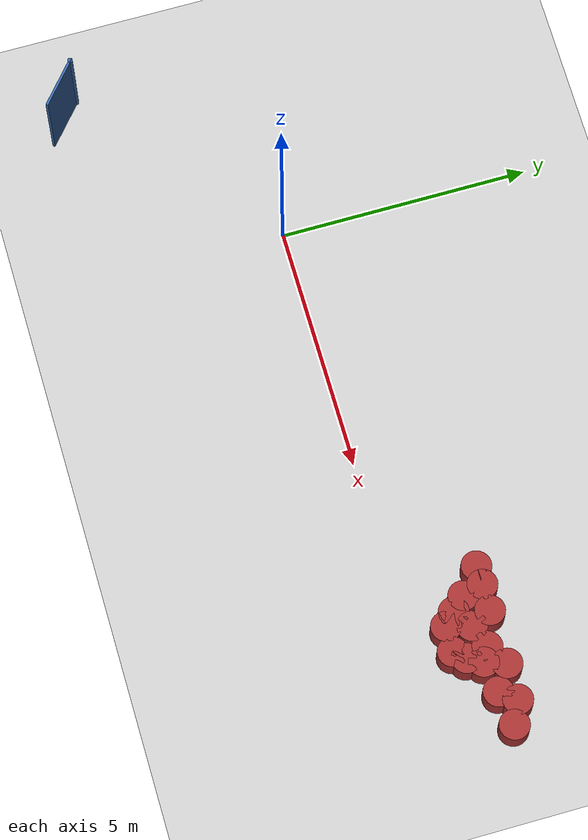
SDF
<sdf version="1.6">
 <world name="default">
  <model name="ground_plane">
   <static>1</static>
   <link name="link">
    <collision name="collision">
     <geometry><plane><normal>0 0 1</normal><size>100 100</size></plane></geometry>
     <surface><friction><ode><mu>100</mu><mu2>50</mu2></ode></friction></surface>
    </collision>
    <visual name="visual">
     <cast_shadows>0</cast_shadows>
     <geometry><plane><normal>0 0 1</normal><size>100 100</size></plane></geometry>
     <material>
      <script><uri>file://media/materials/scripts/gazebo.material</uri><name>Gazebo/Grey</name></script>
     </material>
    </visual>
   </link>
  </model>
  <model name="unit_cylinder_0">
   <static>1</static>
   <pose>8.49487 0.951336 0 0 -0 0</pose>
   <link name="link">
    <inertial>
     <mass>1</mass>
     <inertia><ixx>0.145833</ixx><ixy>0</ixy><ixz>0</ixz><iyy>0.145833</iyy><iyz>0</iyz><izz>0.125</izz></inertia>
    </inertial>
    <collision name="collision">
     <geometry><cylinder><radius>0.3</radius><length>1</length></cylinder></geometry>
    </collision>
    <visual name="visual">
     <geometry><cylinder><radius>0.3</radius><length>1</length></cylinder></geometry>
     <material><ambient>0.648 0.192 0.192 1</ambient><diffuse>0.648 0.192 0.192 1</diffuse></material>
     <material>
      <script><name>Gazebo/Grey</name><uri>file://media/materials/scripts/gazebo.material</uri></script>
     </material>
    </visual>
   </link>
  </model>
  <model name="unit_cylinder_8">
   <static>1</static>
   <pose>7.7404 1.62892 0 0 -0 0</pose>
   <link name="link">
    <inertial>
     <mass>1</mass>
     <inertia><ixx>0.145833</ixx><ixy>0</ixy><ixz>0</ixz><iyy>0.145833</iyy><iyz>0</iyz><izz>0.125</izz></inertia>
    </inertial>
    <collision name="collision">
     <geometry><cylinder><radius>0.3</radius><length>1</length></cylinder></geometry>
    </collision>
    <visual name="visual">
     <geometry><cylinder><radius>0.3</radius><length>1</length></cylinder></geometry>
     <material><ambient>0.648 0.192 0.192 1</ambient><diffuse>0.648 0.192 0.192 1</diffuse></material>
     <material>
      <script><name>Gazebo/Grey</name><uri>file://media/materials/scripts/gazebo.material</uri></script>
     </material>
    </visual>
   </link>
  </model>
  <model name="unit_cylinder_9">
   <static>1</static>
   <pose>8.23796 1.21672 0 0 -0 0</pose>
   <link name="link">
    <inertial>
     <mass>1</mass>
     <inertia><ixx>0.145833</ixx><ixy>0</ixy><ixz>0</ixz><iyy>0.145833</iyy><iyz>0</iyz><izz>0.125</izz></inertia>
    </inertial>
    <collision name="collision">
     <geometry><cylinder><radius>0.3</radius><length>1</length></cylinder></geometry>
    </collision>
    <visual name="visual">
     <geometry><cylinder><radius>0.3</radius><length>1</length></cylinder></geometry>
     <material><ambient>0.648 0.192 0.192 1</ambient><diffuse>0.648 0.192 0.192 1</diffuse></material>
     <material>
      <script><name>Gazebo/Grey</name><uri>file://media/materials/scripts/gazebo.material</uri></script>
     </material>
    </visual>
   </link>
  </model>
  <model name="unit_cylinder_14">
   <static>1</static>
   <pose>10.9078 1.41419 0 0 -0 0</pose>
   <link name="link">
    <inertial>
     <mass>1</mass>
     <inertia><ixx>0.145833</ixx><ixy>0</ixy><ixz>0</ixz><iyy>0.145833</iyy><iyz>0</iyz><izz>0.125</izz></inertia>
    </inertial>
    <collision name="collision">
     <geometry><cylinder><radius>0.3</radius><length>1</length></cylinder></geometry>
    </collision>
    <visual name="visual">
     <geometry><cylinder><radius>0.3</radius><length>1</length></cylinder></geometry>
     <material><ambient>0.648 0.192 0.192 1</ambient><diffuse>0.648 0.192 0.192 1</diffuse></material>
     <material>
      <script><name>Gazebo/Grey</name><uri>file://media/materials/scripts/gazebo.material</uri></script>
     </material>
    </visual>
   </link>
  </model>
  <model name="unit_cylinder_17">
   <static>1</static>
   <pose>10.2158 1.31151 0 0 -0 0</pose>
   <link name="link">
    <inertial>
     <mass>1</mass>
     <inertia><ixx>0.145833</ixx><ixy>0</ixy><ixz>0</ixz><iyy>0.145833</iyy><iyz>0</iyz><izz>0.125</izz></inertia>
    </inertial>
    <collision name="collision">
     <geometry><cylinder><radius>0.3</radius><length>1</length></cylinder></geometry>
    </collision>
    <visual name="visual">
     <geometry><cylinder><radius>0.3</radius><length>1</length></cylinder></geometry>
     <material><ambient>0.648 0.192 0.192 1</ambient><diffuse>0.648 0.192 0.192 1</diffuse></material>
     <material>
      <script><name>Gazebo/Grey</name><uri>file://media/materials/scripts/gazebo.material</uri></script>
     </material>
    </visual>
   </link>
  </model>
  <model name="unit_cylinder_24">
   <static>1</static>
   <pose>10.4578 1.61905 0 0 -0 0</pose>
   <link name="link">
    <inertial>
     <mass>1</mass>
     <inertia><ixx>0.145833</ixx><ixy>0</ixy><ixz>0</ixz><iyy>0.145833</iyy><iyz>0</iyz><izz>0.125</izz></inertia>
    </inertial>
    <collision name="collision">
     <geometry><cylinder><radius>0.3</radius><length>1</length></cylinder></geometry>
    </collision>
    <visual name="visual">
     <geometry><cylinder><radius>0.3</radius><length>1</length></cylinder></geometry>
     <material><ambient>0.648 0.192 0.192 1</ambient><diffuse>0.648 0.192 0.192 1</diffuse></material>
     <material>
      <script><name>Gazebo/Grey</name><uri>file://media/materials/scripts/gazebo.material</uri></script>
     </material>
    </visual>
   </link>
  </model>
  <model name="unit_cylinder_32">
   <static>1</static>
   <pose>9.73455 1.63137 0 0 -0 0</pose>
   <link name="link">
    <inertial>
     <mass>1</mass>
     <inertia><ixx>0.145833</ixx><ixy>0</ixy><ixz>0</ixz><iyy>0.145833</iyy><iyz>0</iyz><izz>0.125</izz></inertia>
    </inertial>
    <collision name="collision">
     <geometry><cylinder><radius>0.3</radius><length>1</length></cylinder></geometry>
    </collision>
    <visual name="visual">
     <geometry><cylinder><radius>0.3</radius><length>1</length></cylinder></geometry>
     <material><ambient>0.648 0.192 0.192 1</ambient><diffuse>0.648 0.192 0.192 1</diffuse></material>
     <material>
      <script><name>Gazebo/Grey</name><uri>file://media/materials/scripts/gazebo.material</uri></script>
     </material>
    </visual>
   </link>
  </model>
  <model name="unit_cylinder_41">
   <static>1</static>
   <pose>9.42873 0.920726 0 0 -0 0</pose>
   <link name="link">
    <inertial>
     <mass>1</mass>
     <inertia><ixx>0.145833</ixx><ixy>0</ixy><ixz>0</ixz><iyy>0.145833</iyy><iyz>0</iyz><izz>0.125</izz></inertia>
    </inertial>
    <collision name="collision">
     <geometry><cylinder><radius>0.3</radius><length>1</length></cylinder></geometry>
    </collision>
    <visual name="visual">
     <geometry><cylinder><radius>0.3</radius><length>1</length></cylinder></geometry>
     <material><ambient>0.648 0.192 0.192 1</ambient><diffuse>0.648 0.192 0.192 1</diffuse></material>
     <material>
      <script><name>Gazebo/Grey</name><uri>file://media/materials/scripts/gazebo.material</uri></script>
     </material>
    </visual>
   </link>
  </model>
  <model name="unit_cylinder_42">
   <static>1</static>
   <pose>9.23696 0.705928 0 0 -0 0</pose>
   <link name="link">
    <inertial>
     <mass>1</mass>
     <inertia><ixx>0.145833</ixx><ixy>0</ixy><ixz>0</ixz><iyy>0.145833</iyy><iyz>0</iyz><izz>0.125</izz></inertia>
    </inertial>
    <collision name="collision">
     <geometry><cylinder><radius>0.3</radius><length>1</length></cylinder></geometry>
    </collision>
    <visual name="visual">
     <geometry><cylinder><radius>0.3</radius><length>1</length></cylinder></geometry>
     <material><ambient>0.648 0.192 0.192 1</ambient><diffuse>0.648 0.192 0.192 1</diffuse></material>
     <material>
      <script><name>Gazebo/Grey</name><uri>file://media/materials/scripts/gazebo.material</uri></script>
     </material>
    </visual>
   </link>
  </model>
  <model name="unit_cylinder_45">
   <static>1</static>
   <pose>9.58952 1.21252 0 0 -0 0</pose>
   <link name="link">
    <inertial>
     <mass>1</mass>
     <inertia><ixx>0.145833</ixx><ixy>0</ixy><ixz>0</ixz><iyy>0.145833</iyy><iyz>0</iyz><izz>0.125</izz></inertia>
    </inertial>
    <collision name="collision">
     <geometry><cylinder><radius>0.3</radius><length>1</length></cylinder></geometry>
    </collision>
    <visual name="visual">
     <geometry><cylinder><radius>0.3</radius><length>1</length></cylinder></geometry>
     <material><ambient>0.648 0.192 0.192 1</ambient><diffuse>0.648 0.192 0.192 1</diffuse></material>
     <material>
      <script><name>Gazebo/Grey</name><uri>file://media/materials/scripts/gazebo.material</uri></script>
     </material>
    </visual>
   </link>
  </model>
  <model name="unit_cylinder_46">
   <static>1</static>
   <pose>9.31119 1.36847 0 0 -0 0</pose>
   <link name="link">
    <inertial>
     <mass>1</mass>
     <inertia><ixx>0.145833</ixx><ixy>0</ixy><ixz>0</ixz><iyy>0.145833</iyy><iyz>0</iyz><izz>0.125</izz></inertia>
    </inertial>
    <collision name="collision">
     <geometry><cylinder><radius>0.3</radius><length>1</length></cylinder></geometry>
    </collision>
    <visual name="visual">
     <geometry><cylinder><radius>0.3</radius><length>1</length></cylinder></geometry>
     <material><ambient>0.648 0.192 0.192 1</ambient><diffuse>0.648 0.192 0.192 1</diffuse></material>
     <material>
      <script><name>Gazebo/Grey</name><uri>file://media/materials/scripts/gazebo.material</uri></script>
     </material>
    </visual>
   </link>
  </model>
  <model name="unit_cylinder_346">
   <static>1</static>
   <pose>8.65275 1.62159 0 0 -0 0</pose>
   <link name="link">
    <inertial>
     <mass>1</mass>
     <inertia><ixx>0.145833</ixx><ixy>0</ixy><ixz>0</ixz><iyy>0.145833</iyy><iyz>0</iyz><izz>0.125</izz></inertia>
    </inertial>
    <collision name="collision">
     <geometry><cylinder><radius>0.3</radius><length>1</length></cylinder></geometry>
    </collision>
    <visual name="visual">
     <geometry><cylinder><radius>0.3</radius><length>1</length></cylinder></geometry>
     <material><ambient>0.648 0.192 0.192 1</ambient><diffuse>0.648 0.192 0.192 1</diffuse></material>
     <material>
      <script><name>Gazebo/Grey</name><uri>file://media/materials/scripts/gazebo.material</uri></script>
     </material>
    </visual>
   </link>
  </model>
  <model name="unit_cylinder_350">
   <static>1</static>
   <pose>8.85704 1.20294 0 0 -0 0</pose>
   <link name="link">
    <inertial>
     <mass>1</mass>
     <inertia><ixx>0.145833</ixx><ixy>0</ixy><ixz>0</ixz><iyy>0.145833</iyy><iyz>0</iyz><izz>0.125</izz></inertia>
    </inertial>
    <collision name="collision">
     <geometry><cylinder><radius>0.3</radius><length>1</length></cylinder></geometry>
    </collision>
    <visual name="visual">
     <geometry><cylinder><radius>0.3</radius><length>1</length></cylinder></geometry>
     <material><ambient>0.648 0.192 0.192 1</ambient><diffuse>0.648 0.192 0.192 1</diffuse></material>
     <material>
      <script><name>Gazebo/Grey</name><uri>file://media/materials/scripts/gazebo.material</uri></script>
     </material>
    </visual>
   </link>
  </model>
  <model name="unit_cylinder_353">
   <static>1</static>
   <pose>8.72731 0.727768 0 0 -0 0</pose>
   <link name="link">
    <inertial>
     <mass>1</mass>
     <inertia><ixx>0.145833</ixx><ixy>0</ixy><ixz>0</ixz><iyy>0.145833</iyy><iyz>0</iyz><izz>0.125</izz></inertia>
    </inertial>
    <collision name="collision">
     <geometry><cylinder><radius>0.3</radius><length>1</length></cylinder></geometry>
    </collision>
    <visual name="visual">
     <geometry><cylinder><radius>0.3</radius><length>1</length></cylinder></geometry>
     <material><ambient>0.648 0.192 0.192 1</ambient><diffuse>0.648 0.192 0.192 1</diffuse></material>
     <material>
      <script><name>Gazebo/Grey</name><uri>file://media/materials/scripts/gazebo.material</uri></script>
     </material>
    </visual>
   </link>
  </model>
  <model name="unit_cylinder_358">
   <static>1</static>
   <pose>8.12041 1.63309 0 0 -0 0</pose>
   <link name="link">
    <inertial>
     <mass>1</mass>
     <inertia><ixx>0.145833</ixx><ixy>0</ixy><ixz>0</ixz><iyy>0.145833</iyy><iyz>0</iyz><izz>0.125</izz></inertia>
    </inertial>
    <collision name="collision">
     <geometry><cylinder><radius>0.3</radius><length>1</length></cylinder></geometry>
    </collision>
    <visual name="visual">
     <geometry><cylinder><radius>0.3</radius><length>1</length></cylinder></geometry>
     <material><ambient>0.648 0.192 0.192 1</ambient><diffuse>0.648 0.192 0.192 1</diffuse></material>
     <material>
      <script><name>Gazebo/Grey</name><uri>file://media/materials/scripts/gazebo.material</uri></script>
     </material>
    </visual>
   </link>
  </model>
  <model name="hinge_door">
   <link name="link_0">
    <inertial>
     <mass>0.11</mass>
     <inertia>
      <ixx>0.0366896</ixx>
      <ixy>0</ixy>
      <ixz>0</ixz>
      <iyy>0.0477583</iyy>
      <iyz>0</iyz>
      <izz>0.0111146</izz>
     </inertia>
    </inertial>
    <pose>0.25 0 1 0 -0 0</pose>
    <visual name="visual">
     <geometry><box><size>1.1 0.05 2</size></box></geometry>
     <material>
      <lighting>1</lighting>
      <script><uri>file://media/materials/scripts/gazebo.material</uri><name>Gazebo/Grey</name></script>
      <shader type="pixel"><normal_map>__default__</normal_map></shader>
      <ambient>0.204 0.396 0.643 1</ambient>
      <diffuse>0.7 0.7 0.7 1</diffuse>
      <specular>0.01 0.01 0.01 1</specular>
      <emissive>0 0 0 1</emissive>
     </material>
    </visual>
    <collision name="collision">
     <geometry><box><size>1.1 0.05 2</size></box></geometry>
     <surface>
      <friction>
       <ode><mu>1</mu><mu2>1</mu2><fdir1>0 0 0</fdir1><slip1>0</slip1><slip2>0</slip2></ode>
       <torsional>
        <coefficient>1</coefficient>
        <patch_radius>0</patch_radius>
        <surface_radius>0</surface_radius>
        <use_patch_radius>1</use_patch_radius>
        <ode><slip>0</slip></ode>
       </torsional>
      </friction>
      <bounce><restitution_coefficient>0</restitution_coefficient><threshold>1e+06</threshold></bounce>
      <contact>
       <collide_without_contact>0</collide_without_contact>
       <collide_without_contact_bitmask>1</collide_without_contact_bitmask>
       <collide_bitmask>1</collide_bitmask>
       <ode>
        <soft_cfm>0</soft_cfm>
        <soft_erp>0.2</soft_erp>
        <kp>1e+13</kp>
        <kd>1</kd>
        <max_vel>0.01</max_vel>
        <min_depth>0</min_depth>
       </ode>
       <bullet>
        <split_impulse>1</split_impulse>
        <split_impulse_penetration_threshold>-0.01</split_impulse_penetration_threshold>
        <soft_cfm>0</soft_cfm>
        <soft_erp>0.2</soft_erp>
        <kp>1e+13</kp>
        <kd>1</kd>
       </bullet>
      </contact>
     </surface>
    </collision>
   </link>
   <link name="link_1">
    <inertial>
     <mass>10.9956</mass>
     <inertia>
      <ixx>3.67206</ixx>
      <ixy>0</ixy>
      <ixz>0</ixz>
      <iyy>3.67206</iyy>
      <iyz>0</iyz>
      <izz>0.0137445</izz>
     </inertia>
    </inertial>
    <pose>-0.25 0 1 0 -0 0</pose>
    <visual name="visual">
     <geometry><cylinder><radius>0.05</radius><length>2</length></cylinder></geometry>
     <material>
      <lighting>1</lighting>
      <script><uri>file://media/materials/scripts/gazebo.material</uri><name>Gazebo/Grey</name></script>
      <shader type="pixel"><normal_map>__default__</normal_map></shader>
      <ambient>0.204 0.396 0.643 1</ambient>
      <diffuse>0.7 0.7 0.7 1</diffuse>
      <specular>0.01 0.01 0.01 1</specular>
      <emissive>0 0 0 1</emissive>
     </material>
    </visual>
    <collision name="collision">
     <geometry><cylinder><radius>0.05</radius><length>2</length></cylinder></geometry>
     <surface>
      <friction>
       <ode><mu>1</mu><mu2>1</mu2><fdir1>0 0 0</fdir1><slip1>0</slip1><slip2>0</slip2></ode>
       <torsional>
        <coefficient>1</coefficient>
        <patch_radius>0</patch_radius>
        <surface_radius>0</surface_radius>
        <use_patch_radius>1</use_patch_radius>
        <ode><slip>0</slip></ode>
       </torsional>
      </friction>
      <bounce><restitution_coefficient>0</restitution_coefficient><threshold>1e+06</threshold></bounce>
      <contact>
       <collide_without_contact>0</collide_without_contact>
       <collide_without_contact_bitmask>1</collide_without_contact_bitmask>
       <collide_bitmask>1</collide_bitmask>
       <ode>
        <soft_cfm>0</soft_cfm>
        <soft_erp>0.2</soft_erp>
        <kp>1e+13</kp>
        <kd>1</kd>
        <max_vel>0.01</max_vel>
        <min_depth>0</min_depth>
       </ode>
       <bullet>
        <split_impulse>1</split_impulse>
        <split_impulse_penetration_threshold>-0.01</split_impulse_penetration_threshold>
        <soft_cfm>0</soft_cfm>
        <soft_erp>0.2</soft_erp>
        <kp>1e+13</kp>
        <kd>1</kd>
       </bullet>
      </contact>
     </surface>
    </collision>
   </link>
   <joint name="hinge" type="revolute">
    <parent>link_1</parent>
    <child>link_0</child>
    <pose>-0.5 0 0 0 -0 0</pose>
    <axis>
     <xyz>0 0 1</xyz>
     <use_parent_model_frame>0</use_parent_model_frame>
     <limit>
      <lower>-1.79769e+308</lower>
      <upper>1.79769e+308</upper>
      <effort>-1</effort>
      <velocity>-1</velocity>
     </limit>
     <dynamics>
      <spring_reference>0</spring_reference>
      <spring_stiffness>0</spring_stiffness>
      <damping>0</damping>
      <friction>0</friction>
     </dynamics>
    </axis>
    <physics>
     <ode><limit><cfm>0</cfm><erp>0.2</erp></limit><suspension><cfm>0</cfm><erp>0.2</erp></suspension></ode>
    </physics>
   </joint>
   <joint name="floor_link" type="fixed">
    <child>link_1</child>
    <parent>world</parent>
    <axis>
     <xyz>0 0 1</xyz>
     <dynamics><spring_reference>0</spring_reference><spring_stiffness>0</spring_stiffness></dynamics>
     <use_parent_model_frame>0</use_parent_model_frame>
     <limit><lower>-1e+16</lower><upper>1e+16</upper></limit>
    </axis>
   </joint>
   <pose>-3.74445 -3.37786 0 0 -0 -0.7</pose>
  </model>
 </world>
</sdf>
